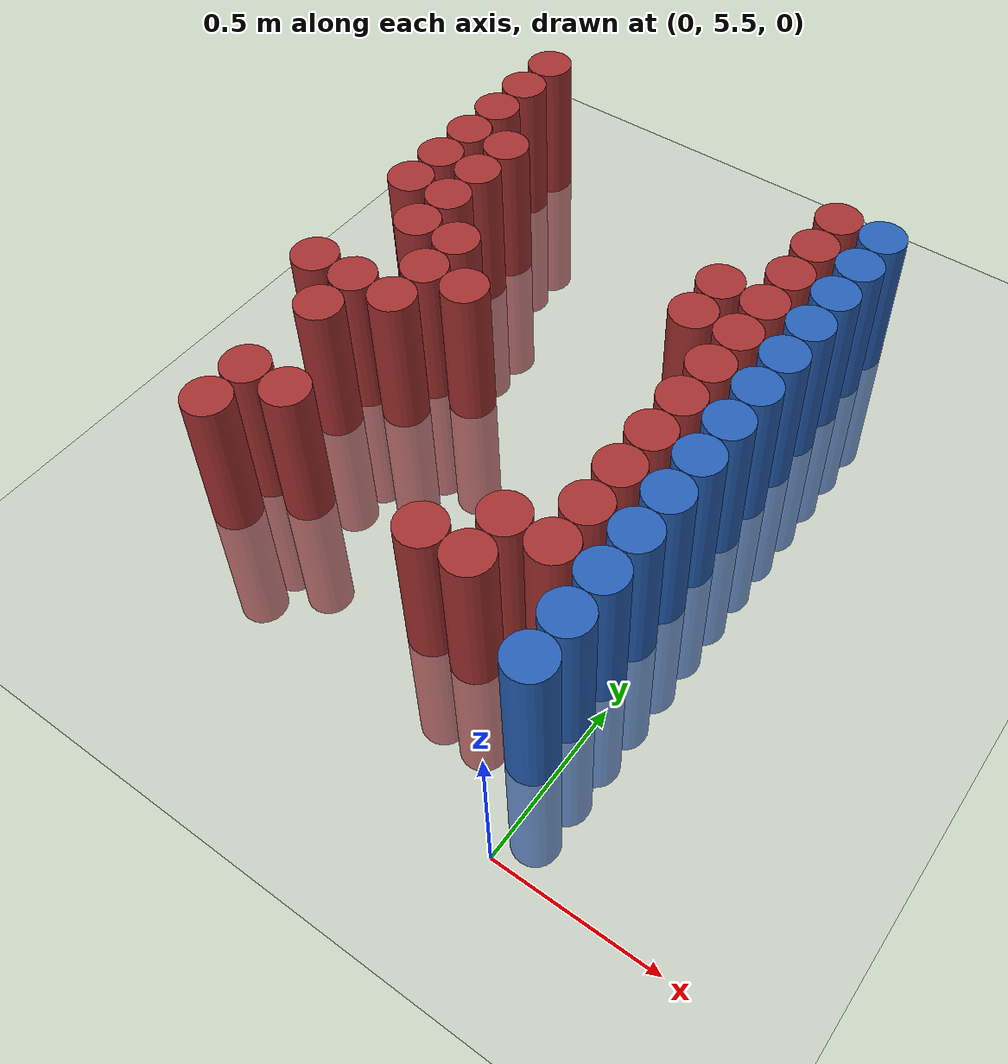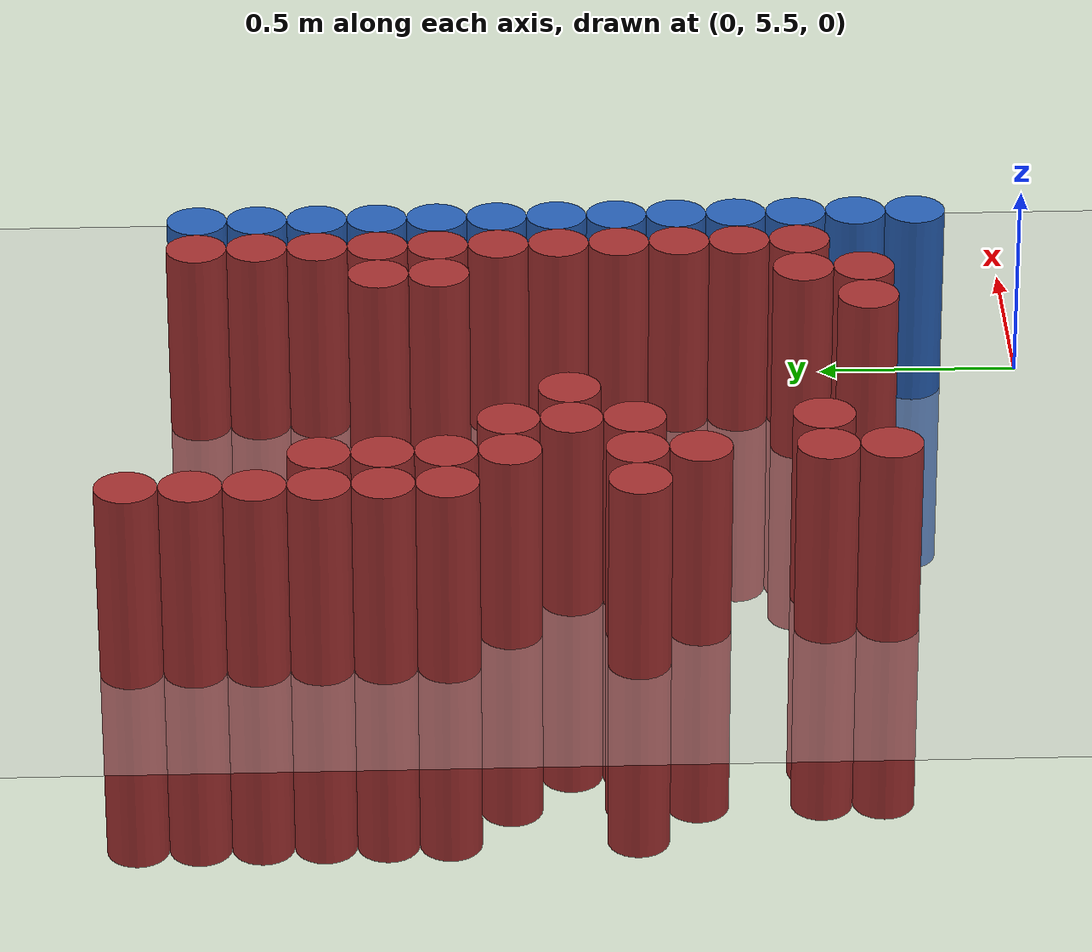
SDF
<sdf version="1.6">
 <world name="default">
  <model name="ground_plane">
   <static>1</static>
   <link name="link">
    <collision name="collision">
     <geometry><plane><normal>0 0 1</normal><size>100 100</size></plane></geometry>
     <surface><friction><ode><mu>100</mu><mu2>50</mu2></ode></friction></surface>
    </collision>
    <visual name="visual">
     <cast_shadows>0</cast_shadows>
     <geometry><plane><normal>0 0 1</normal><size>100 100</size></plane></geometry>
     <material>
      <script><uri>file://media/materials/scripts/gazebo.material</uri><name>Gazebo/Grey</name></script>
     </material>
    </visual>
   </link>
  </model>
  <model name="unit_cylinder_230">
   <static>1</static>
   <pose>-1.425000 6.525000 0.000000 0.000000 0.000000 0.000000</pose>
   <link name="link">
    <inertial>
     <mass>1</mass>
     <inertia><ixx>0.145833</ixx><ixy>0</ixy><ixz>0</ixz><iyy>0.145833</iyy><iyz>0</iyz><izz>0.125</izz></inertia>
    </inertial>
    <collision name="collision">
     <geometry><cylinder><radius>0.075000</radius><length>1</length></cylinder></geometry>
    </collision>
    <visual name="visual">
     <geometry><cylinder><radius>0.075000</radius><length>1</length></cylinder></geometry>
     <material>
      <ambient>0.648000 0.192000 0.192000 1</ambient>
      <diffuse>0.648000 0.192000 0.192000 1</diffuse>
     </material>
     <material>
      <script><name>Gazebo/Grey</name><uri>file://media/materials/scripts/gazebo.material</uri></script>
     </material>
    </visual>
   </link>
  </model>
  <model name="unit_cylinder_231">
   <static>1</static>
   <pose>-1.425000 6.975000 0.000000 0.000000 0.000000 0.000000</pose>
   <link name="link">
    <inertial>
     <mass>1</mass>
     <inertia><ixx>0.145833</ixx><ixy>0</ixy><ixz>0</ixz><iyy>0.145833</iyy><iyz>0</iyz><izz>0.125</izz></inertia>
    </inertial>
    <collision name="collision">
     <geometry><cylinder><radius>0.075000</radius><length>1</length></cylinder></geometry>
    </collision>
    <visual name="visual">
     <geometry><cylinder><radius>0.075000</radius><length>1</length></cylinder></geometry>
     <material>
      <ambient>0.648000 0.192000 0.192000 1</ambient>
      <diffuse>0.648000 0.192000 0.192000 1</diffuse>
     </material>
     <material>
      <script><name>Gazebo/Grey</name><uri>file://media/materials/scripts/gazebo.material</uri></script>
     </material>
    </visual>
   </link>
  </model>
  <model name="unit_cylinder_232">
   <static>1</static>
   <pose>-1.425000 7.125000 0.000000 0.000000 0.000000 0.000000</pose>
   <link name="link">
    <inertial>
     <mass>1</mass>
     <inertia><ixx>0.145833</ixx><ixy>0</ixy><ixz>0</ixz><iyy>0.145833</iyy><iyz>0</iyz><izz>0.125</izz></inertia>
    </inertial>
    <collision name="collision">
     <geometry><cylinder><radius>0.075000</radius><length>1</length></cylinder></geometry>
    </collision>
    <visual name="visual">
     <geometry><cylinder><radius>0.075000</radius><length>1</length></cylinder></geometry>
     <material>
      <ambient>0.648000 0.192000 0.192000 1</ambient>
      <diffuse>0.648000 0.192000 0.192000 1</diffuse>
     </material>
     <material>
      <script><name>Gazebo/Grey</name><uri>file://media/materials/scripts/gazebo.material</uri></script>
     </material>
    </visual>
   </link>
  </model>
  <model name="unit_cylinder_233">
   <static>1</static>
   <pose>-1.425000 7.275000 0.000000 0.000000 0.000000 0.000000</pose>
   <link name="link">
    <inertial>
     <mass>1</mass>
     <inertia><ixx>0.145833</ixx><ixy>0</ixy><ixz>0</ixz><iyy>0.145833</iyy><iyz>0</iyz><izz>0.125</izz></inertia>
    </inertial>
    <collision name="collision">
     <geometry><cylinder><radius>0.075000</radius><length>1</length></cylinder></geometry>
    </collision>
    <visual name="visual">
     <geometry><cylinder><radius>0.075000</radius><length>1</length></cylinder></geometry>
     <material>
      <ambient>0.648000 0.192000 0.192000 1</ambient>
      <diffuse>0.648000 0.192000 0.192000 1</diffuse>
     </material>
     <material>
      <script><name>Gazebo/Grey</name><uri>file://media/materials/scripts/gazebo.material</uri></script>
     </material>
    </visual>
   </link>
  </model>
  <model name="unit_cylinder_234">
   <static>1</static>
   <pose>-1.425000 7.425000 0.000000 0.000000 0.000000 0.000000</pose>
   <link name="link">
    <inertial>
     <mass>1</mass>
     <inertia><ixx>0.145833</ixx><ixy>0</ixy><ixz>0</ixz><iyy>0.145833</iyy><iyz>0</iyz><izz>0.125</izz></inertia>
    </inertial>
    <collision name="collision">
     <geometry><cylinder><radius>0.075000</radius><length>1</length></cylinder></geometry>
    </collision>
    <visual name="visual">
     <geometry><cylinder><radius>0.075000</radius><length>1</length></cylinder></geometry>
     <material>
      <ambient>0.648000 0.192000 0.192000 1</ambient>
      <diffuse>0.648000 0.192000 0.192000 1</diffuse>
     </material>
     <material>
      <script><name>Gazebo/Grey</name><uri>file://media/materials/scripts/gazebo.material</uri></script>
     </material>
    </visual>
   </link>
  </model>
  <model name="unit_cylinder_235">
   <static>1</static>
   <pose>-1.425000 7.575000 0.000000 0.000000 0.000000 0.000000</pose>
   <link name="link">
    <inertial>
     <mass>1</mass>
     <inertia><ixx>0.145833</ixx><ixy>0</ixy><ixz>0</ixz><iyy>0.145833</iyy><iyz>0</iyz><izz>0.125</izz></inertia>
    </inertial>
    <collision name="collision">
     <geometry><cylinder><radius>0.075000</radius><length>1</length></cylinder></geometry>
    </collision>
    <visual name="visual">
     <geometry><cylinder><radius>0.075000</radius><length>1</length></cylinder></geometry>
     <material>
      <ambient>0.648000 0.192000 0.192000 1</ambient>
      <diffuse>0.648000 0.192000 0.192000 1</diffuse>
     </material>
     <material>
      <script><name>Gazebo/Grey</name><uri>file://media/materials/scripts/gazebo.material</uri></script>
     </material>
    </visual>
   </link>
  </model>
  <model name="unit_cylinder_236">
   <static>1</static>
   <pose>-1.425000 7.725000 0.000000 0.000000 0.000000 0.000000</pose>
   <link name="link">
    <inertial>
     <mass>1</mass>
     <inertia><ixx>0.145833</ixx><ixy>0</ixy><ixz>0</ixz><iyy>0.145833</iyy><iyz>0</iyz><izz>0.125</izz></inertia>
    </inertial>
    <collision name="collision">
     <geometry><cylinder><radius>0.075000</radius><length>1</length></cylinder></geometry>
    </collision>
    <visual name="visual">
     <geometry><cylinder><radius>0.075000</radius><length>1</length></cylinder></geometry>
     <material>
      <ambient>0.648000 0.192000 0.192000 1</ambient>
      <diffuse>0.648000 0.192000 0.192000 1</diffuse>
     </material>
     <material>
      <script><name>Gazebo/Grey</name><uri>file://media/materials/scripts/gazebo.material</uri></script>
     </material>
    </visual>
   </link>
  </model>
  <model name="unit_cylinder_245">
   <static>1</static>
   <pose>-1.275000 5.925000 0.000000 0.000000 0.000000 0.000000</pose>
   <link name="link">
    <inertial>
     <mass>1</mass>
     <inertia><ixx>0.145833</ixx><ixy>0</ixy><ixz>0</ixz><iyy>0.145833</iyy><iyz>0</iyz><izz>0.125</izz></inertia>
    </inertial>
    <collision name="collision">
     <geometry><cylinder><radius>0.075000</radius><length>1</length></cylinder></geometry>
    </collision>
    <visual name="visual">
     <geometry><cylinder><radius>0.075000</radius><length>1</length></cylinder></geometry>
     <material>
      <ambient>0.648000 0.192000 0.192000 1</ambient>
      <diffuse>0.648000 0.192000 0.192000 1</diffuse>
     </material>
     <material>
      <script><name>Gazebo/Grey</name><uri>file://media/materials/scripts/gazebo.material</uri></script>
     </material>
    </visual>
   </link>
  </model>
  <model name="unit_cylinder_246">
   <static>1</static>
   <pose>-1.275000 6.075000 0.000000 0.000000 0.000000 0.000000</pose>
   <link name="link">
    <inertial>
     <mass>1</mass>
     <inertia><ixx>0.145833</ixx><ixy>0</ixy><ixz>0</ixz><iyy>0.145833</iyy><iyz>0</iyz><izz>0.125</izz></inertia>
    </inertial>
    <collision name="collision">
     <geometry><cylinder><radius>0.075000</radius><length>1</length></cylinder></geometry>
    </collision>
    <visual name="visual">
     <geometry><cylinder><radius>0.075000</radius><length>1</length></cylinder></geometry>
     <material>
      <ambient>0.648000 0.192000 0.192000 1</ambient>
      <diffuse>0.648000 0.192000 0.192000 1</diffuse>
     </material>
     <material>
      <script><name>Gazebo/Grey</name><uri>file://media/materials/scripts/gazebo.material</uri></script>
     </material>
    </visual>
   </link>
  </model>
  <model name="unit_cylinder_247">
   <static>1</static>
   <pose>-1.275000 6.375000 0.000000 0.000000 0.000000 0.000000</pose>
   <link name="link">
    <inertial>
     <mass>1</mass>
     <inertia><ixx>0.145833</ixx><ixy>0</ixy><ixz>0</ixz><iyy>0.145833</iyy><iyz>0</iyz><izz>0.125</izz></inertia>
    </inertial>
    <collision name="collision">
     <geometry><cylinder><radius>0.075000</radius><length>1</length></cylinder></geometry>
    </collision>
    <visual name="visual">
     <geometry><cylinder><radius>0.075000</radius><length>1</length></cylinder></geometry>
     <material>
      <ambient>0.648000 0.192000 0.192000 1</ambient>
      <diffuse>0.648000 0.192000 0.192000 1</diffuse>
     </material>
     <material>
      <script><name>Gazebo/Grey</name><uri>file://media/materials/scripts/gazebo.material</uri></script>
     </material>
    </visual>
   </link>
  </model>
  <model name="unit_cylinder_248">
   <static>1</static>
   <pose>-1.275000 6.525000 0.000000 0.000000 0.000000 0.000000</pose>
   <link name="link">
    <inertial>
     <mass>1</mass>
     <inertia><ixx>0.145833</ixx><ixy>0</ixy><ixz>0</ixz><iyy>0.145833</iyy><iyz>0</iyz><izz>0.125</izz></inertia>
    </inertial>
    <collision name="collision">
     <geometry><cylinder><radius>0.075000</radius><length>1</length></cylinder></geometry>
    </collision>
    <visual name="visual">
     <geometry><cylinder><radius>0.075000</radius><length>1</length></cylinder></geometry>
     <material>
      <ambient>0.648000 0.192000 0.192000 1</ambient>
      <diffuse>0.648000 0.192000 0.192000 1</diffuse>
     </material>
     <material>
      <script><name>Gazebo/Grey</name><uri>file://media/materials/scripts/gazebo.material</uri></script>
     </material>
    </visual>
   </link>
  </model>
  <model name="unit_cylinder_249">
   <static>1</static>
   <pose>-1.275000 6.825000 0.000000 0.000000 0.000000 0.000000</pose>
   <link name="link">
    <inertial>
     <mass>1</mass>
     <inertia><ixx>0.145833</ixx><ixy>0</ixy><ixz>0</ixz><iyy>0.145833</iyy><iyz>0</iyz><izz>0.125</izz></inertia>
    </inertial>
    <collision name="collision">
     <geometry><cylinder><radius>0.075000</radius><length>1</length></cylinder></geometry>
    </collision>
    <visual name="visual">
     <geometry><cylinder><radius>0.075000</radius><length>1</length></cylinder></geometry>
     <material>
      <ambient>0.648000 0.192000 0.192000 1</ambient>
      <diffuse>0.648000 0.192000 0.192000 1</diffuse>
     </material>
     <material>
      <script><name>Gazebo/Grey</name><uri>file://media/materials/scripts/gazebo.material</uri></script>
     </material>
    </visual>
   </link>
  </model>
  <model name="unit_cylinder_250">
   <static>1</static>
   <pose>-1.275000 6.975000 0.000000 0.000000 0.000000 0.000000</pose>
   <link name="link">
    <inertial>
     <mass>1</mass>
     <inertia><ixx>0.145833</ixx><ixy>0</ixy><ixz>0</ixz><iyy>0.145833</iyy><iyz>0</iyz><izz>0.125</izz></inertia>
    </inertial>
    <collision name="collision">
     <geometry><cylinder><radius>0.075000</radius><length>1</length></cylinder></geometry>
    </collision>
    <visual name="visual">
     <geometry><cylinder><radius>0.075000</radius><length>1</length></cylinder></geometry>
     <material>
      <ambient>0.648000 0.192000 0.192000 1</ambient>
      <diffuse>0.648000 0.192000 0.192000 1</diffuse>
     </material>
     <material>
      <script><name>Gazebo/Grey</name><uri>file://media/materials/scripts/gazebo.material</uri></script>
     </material>
    </visual>
   </link>
  </model>
  <model name="unit_cylinder_251">
   <static>1</static>
   <pose>-1.275000 7.125000 0.000000 0.000000 0.000000 0.000000</pose>
   <link name="link">
    <inertial>
     <mass>1</mass>
     <inertia><ixx>0.145833</ixx><ixy>0</ixy><ixz>0</ixz><iyy>0.145833</iyy><iyz>0</iyz><izz>0.125</izz></inertia>
    </inertial>
    <collision name="collision">
     <geometry><cylinder><radius>0.075000</radius><length>1</length></cylinder></geometry>
    </collision>
    <visual name="visual">
     <geometry><cylinder><radius>0.075000</radius><length>1</length></cylinder></geometry>
     <material>
      <ambient>0.648000 0.192000 0.192000 1</ambient>
      <diffuse>0.648000 0.192000 0.192000 1</diffuse>
     </material>
     <material>
      <script><name>Gazebo/Grey</name><uri>file://media/materials/scripts/gazebo.material</uri></script>
     </material>
    </visual>
   </link>
  </model>
  <model name="unit_cylinder_252">
   <static>1</static>
   <pose>-1.275000 7.275000 0.000000 0.000000 0.000000 0.000000</pose>
   <link name="link">
    <inertial>
     <mass>1</mass>
     <inertia><ixx>0.145833</ixx><ixy>0</ixy><ixz>0</ixz><iyy>0.145833</iyy><iyz>0</iyz><izz>0.125</izz></inertia>
    </inertial>
    <collision name="collision">
     <geometry><cylinder><radius>0.075000</radius><length>1</length></cylinder></geometry>
    </collision>
    <visual name="visual">
     <geometry><cylinder><radius>0.075000</radius><length>1</length></cylinder></geometry>
     <material>
      <ambient>0.648000 0.192000 0.192000 1</ambient>
      <diffuse>0.648000 0.192000 0.192000 1</diffuse>
     </material>
     <material>
      <script><name>Gazebo/Grey</name><uri>file://media/materials/scripts/gazebo.material</uri></script>
     </material>
    </visual>
   </link>
  </model>
  <model name="unit_cylinder_260">
   <static>1</static>
   <pose>-1.125000 6.075000 0.000000 0.000000 0.000000 0.000000</pose>
   <link name="link">
    <inertial>
     <mass>1</mass>
     <inertia><ixx>0.145833</ixx><ixy>0</ixy><ixz>0</ixz><iyy>0.145833</iyy><iyz>0</iyz><izz>0.125</izz></inertia>
    </inertial>
    <collision name="collision">
     <geometry><cylinder><radius>0.075000</radius><length>1</length></cylinder></geometry>
    </collision>
    <visual name="visual">
     <geometry><cylinder><radius>0.075000</radius><length>1</length></cylinder></geometry>
     <material>
      <ambient>0.648000 0.192000 0.192000 1</ambient>
      <diffuse>0.648000 0.192000 0.192000 1</diffuse>
     </material>
     <material>
      <script><name>Gazebo/Grey</name><uri>file://media/materials/scripts/gazebo.material</uri></script>
     </material>
    </visual>
   </link>
  </model>
  <model name="unit_cylinder_261">
   <static>1</static>
   <pose>-1.125000 6.525000 0.000000 0.000000 0.000000 0.000000</pose>
   <link name="link">
    <inertial>
     <mass>1</mass>
     <inertia><ixx>0.145833</ixx><ixy>0</ixy><ixz>0</ixz><iyy>0.145833</iyy><iyz>0</iyz><izz>0.125</izz></inertia>
    </inertial>
    <collision name="collision">
     <geometry><cylinder><radius>0.075000</radius><length>1</length></cylinder></geometry>
    </collision>
    <visual name="visual">
     <geometry><cylinder><radius>0.075000</radius><length>1</length></cylinder></geometry>
     <material>
      <ambient>0.648000 0.192000 0.192000 1</ambient>
      <diffuse>0.648000 0.192000 0.192000 1</diffuse>
     </material>
     <material>
      <script><name>Gazebo/Grey</name><uri>file://media/materials/scripts/gazebo.material</uri></script>
     </material>
    </visual>
   </link>
  </model>
  <model name="unit_cylinder_262">
   <static>1</static>
   <pose>-1.125000 6.675000 0.000000 0.000000 0.000000 0.000000</pose>
   <link name="link">
    <inertial>
     <mass>1</mass>
     <inertia><ixx>0.145833</ixx><ixy>0</ixy><ixz>0</ixz><iyy>0.145833</iyy><iyz>0</iyz><izz>0.125</izz></inertia>
    </inertial>
    <collision name="collision">
     <geometry><cylinder><radius>0.075000</radius><length>1</length></cylinder></geometry>
    </collision>
    <visual name="visual">
     <geometry><cylinder><radius>0.075000</radius><length>1</length></cylinder></geometry>
     <material>
      <ambient>0.648000 0.192000 0.192000 1</ambient>
      <diffuse>0.648000 0.192000 0.192000 1</diffuse>
     </material>
     <material>
      <script><name>Gazebo/Grey</name><uri>file://media/materials/scripts/gazebo.material</uri></script>
     </material>
    </visual>
   </link>
  </model>
  <model name="unit_cylinder_263">
   <static>1</static>
   <pose>-1.125000 6.825000 0.000000 0.000000 0.000000 0.000000</pose>
   <link name="link">
    <inertial>
     <mass>1</mass>
     <inertia><ixx>0.145833</ixx><ixy>0</ixy><ixz>0</ixz><iyy>0.145833</iyy><iyz>0</iyz><izz>0.125</izz></inertia>
    </inertial>
    <collision name="collision">
     <geometry><cylinder><radius>0.075000</radius><length>1</length></cylinder></geometry>
    </collision>
    <visual name="visual">
     <geometry><cylinder><radius>0.075000</radius><length>1</length></cylinder></geometry>
     <material>
      <ambient>0.648000 0.192000 0.192000 1</ambient>
      <diffuse>0.648000 0.192000 0.192000 1</diffuse>
     </material>
     <material>
      <script><name>Gazebo/Grey</name><uri>file://media/materials/scripts/gazebo.material</uri></script>
     </material>
    </visual>
   </link>
  </model>
  <model name="unit_cylinder_267">
   <static>1</static>
   <pose>-0.975000 6.675000 0.000000 0.000000 0.000000 0.000000</pose>
   <link name="link">
    <inertial>
     <mass>1</mass>
     <inertia><ixx>0.145833</ixx><ixy>0</ixy><ixz>0</ixz><iyy>0.145833</iyy><iyz>0</iyz><izz>0.125</izz></inertia>
    </inertial>
    <collision name="collision">
     <geometry><cylinder><radius>0.075000</radius><length>1</length></cylinder></geometry>
    </collision>
    <visual name="visual">
     <geometry><cylinder><radius>0.075000</radius><length>1</length></cylinder></geometry>
     <material>
      <ambient>0.648000 0.192000 0.192000 1</ambient>
      <diffuse>0.648000 0.192000 0.192000 1</diffuse>
     </material>
     <material>
      <script><name>Gazebo/Grey</name><uri>file://media/materials/scripts/gazebo.material</uri></script>
     </material>
    </visual>
   </link>
  </model>
  <model name="unit_cylinder_280">
   <static>1</static>
   <pose>-0.525000 5.925000 0.000000 0.000000 0.000000 0.000000</pose>
   <link name="link">
    <inertial>
     <mass>1</mass>
     <inertia><ixx>0.145833</ixx><ixy>0</ixy><ixz>0</ixz><iyy>0.145833</iyy><iyz>0</iyz><izz>0.125</izz></inertia>
    </inertial>
    <collision name="collision">
     <geometry><cylinder><radius>0.075000</radius><length>1</length></cylinder></geometry>
    </collision>
    <visual name="visual">
     <geometry><cylinder><radius>0.075000</radius><length>1</length></cylinder></geometry>
     <material>
      <ambient>0.648000 0.192000 0.192000 1</ambient>
      <diffuse>0.648000 0.192000 0.192000 1</diffuse>
     </material>
     <material>
      <script><name>Gazebo/Grey</name><uri>file://media/materials/scripts/gazebo.material</uri></script>
     </material>
    </visual>
   </link>
  </model>
  <model name="unit_cylinder_285">
   <static>1</static>
   <pose>-0.375000 5.925000 0.000000 0.000000 0.000000 0.000000</pose>
   <link name="link">
    <inertial>
     <mass>1</mass>
     <inertia><ixx>0.145833</ixx><ixy>0</ixy><ixz>0</ixz><iyy>0.145833</iyy><iyz>0</iyz><izz>0.125</izz></inertia>
    </inertial>
    <collision name="collision">
     <geometry><cylinder><radius>0.075000</radius><length>1</length></cylinder></geometry>
    </collision>
    <visual name="visual">
     <geometry><cylinder><radius>0.075000</radius><length>1</length></cylinder></geometry>
     <material>
      <ambient>0.648000 0.192000 0.192000 1</ambient>
      <diffuse>0.648000 0.192000 0.192000 1</diffuse>
     </material>
     <material>
      <script><name>Gazebo/Grey</name><uri>file://media/materials/scripts/gazebo.material</uri></script>
     </material>
    </visual>
   </link>
  </model>
  <model name="unit_cylinder_286">
   <static>1</static>
   <pose>-0.375000 6.075000 0.000000 0.000000 0.000000 0.000000</pose>
   <link name="link">
    <inertial>
     <mass>1</mass>
     <inertia><ixx>0.145833</ixx><ixy>0</ixy><ixz>0</ixz><iyy>0.145833</iyy><iyz>0</iyz><izz>0.125</izz></inertia>
    </inertial>
    <collision name="collision">
     <geometry><cylinder><radius>0.075000</radius><length>1</length></cylinder></geometry>
    </collision>
    <visual name="visual">
     <geometry><cylinder><radius>0.075000</radius><length>1</length></cylinder></geometry>
     <material>
      <ambient>0.648000 0.192000 0.192000 1</ambient>
      <diffuse>0.648000 0.192000 0.192000 1</diffuse>
     </material>
     <material>
      <script><name>Gazebo/Grey</name><uri>file://media/materials/scripts/gazebo.material</uri></script>
     </material>
    </visual>
   </link>
  </model>
  <model name="unit_cylinder_287">
   <static>1</static>
   <pose>-0.375000 6.975000 0.000000 0.000000 0.000000 0.000000</pose>
   <link name="link">
    <inertial>
     <mass>1</mass>
     <inertia><ixx>0.145833</ixx><ixy>0</ixy><ixz>0</ixz><iyy>0.145833</iyy><iyz>0</iyz><izz>0.125</izz></inertia>
    </inertial>
    <collision name="collision">
     <geometry><cylinder><radius>0.075000</radius><length>1</length></cylinder></geometry>
    </collision>
    <visual name="visual">
     <geometry><cylinder><radius>0.075000</radius><length>1</length></cylinder></geometry>
     <material>
      <ambient>0.648000 0.192000 0.192000 1</ambient>
      <diffuse>0.648000 0.192000 0.192000 1</diffuse>
     </material>
     <material>
      <script><name>Gazebo/Grey</name><uri>file://media/materials/scripts/gazebo.material</uri></script>
     </material>
    </visual>
   </link>
  </model>
  <model name="unit_cylinder_288">
   <static>1</static>
   <pose>-0.375000 7.125000 0.000000 0.000000 0.000000 0.000000</pose>
   <link name="link">
    <inertial>
     <mass>1</mass>
     <inertia><ixx>0.145833</ixx><ixy>0</ixy><ixz>0</ixz><iyy>0.145833</iyy><iyz>0</iyz><izz>0.125</izz></inertia>
    </inertial>
    <collision name="collision">
     <geometry><cylinder><radius>0.075000</radius><length>1</length></cylinder></geometry>
    </collision>
    <visual name="visual">
     <geometry><cylinder><radius>0.075000</radius><length>1</length></cylinder></geometry>
     <material>
      <ambient>0.648000 0.192000 0.192000 1</ambient>
      <diffuse>0.648000 0.192000 0.192000 1</diffuse>
     </material>
     <material>
      <script><name>Gazebo/Grey</name><uri>file://media/materials/scripts/gazebo.material</uri></script>
     </material>
    </visual>
   </link>
  </model>
  <model name="unit_cylinder_294">
   <static>1</static>
   <pose>-0.225000 6.075000 0.000000 0.000000 0.000000 0.000000</pose>
   <link name="link">
    <inertial>
     <mass>1</mass>
     <inertia><ixx>0.145833</ixx><ixy>0</ixy><ixz>0</ixz><iyy>0.145833</iyy><iyz>0</iyz><izz>0.125</izz></inertia>
    </inertial>
    <collision name="collision">
     <geometry><cylinder><radius>0.075000</radius><length>1</length></cylinder></geometry>
    </collision>
    <visual name="visual">
     <geometry><cylinder><radius>0.075000</radius><length>1</length></cylinder></geometry>
     <material>
      <ambient>0.648000 0.192000 0.192000 1</ambient>
      <diffuse>0.648000 0.192000 0.192000 1</diffuse>
     </material>
     <material>
      <script><name>Gazebo/Grey</name><uri>file://media/materials/scripts/gazebo.material</uri></script>
     </material>
    </visual>
   </link>
  </model>
  <model name="unit_cylinder_295">
   <static>1</static>
   <pose>-0.225000 6.225000 0.000000 0.000000 0.000000 0.000000</pose>
   <link name="link">
    <inertial>
     <mass>1</mass>
     <inertia><ixx>0.145833</ixx><ixy>0</ixy><ixz>0</ixz><iyy>0.145833</iyy><iyz>0</iyz><izz>0.125</izz></inertia>
    </inertial>
    <collision name="collision">
     <geometry><cylinder><radius>0.075000</radius><length>1</length></cylinder></geometry>
    </collision>
    <visual name="visual">
     <geometry><cylinder><radius>0.075000</radius><length>1</length></cylinder></geometry>
     <material>
      <ambient>0.648000 0.192000 0.192000 1</ambient>
      <diffuse>0.648000 0.192000 0.192000 1</diffuse>
     </material>
     <material>
      <script><name>Gazebo/Grey</name><uri>file://media/materials/scripts/gazebo.material</uri></script>
     </material>
    </visual>
   </link>
  </model>
  <model name="unit_cylinder_296">
   <static>1</static>
   <pose>-0.225000 6.375000 0.000000 0.000000 0.000000 0.000000</pose>
   <link name="link">
    <inertial>
     <mass>1</mass>
     <inertia><ixx>0.145833</ixx><ixy>0</ixy><ixz>0</ixz><iyy>0.145833</iyy><iyz>0</iyz><izz>0.125</izz></inertia>
    </inertial>
    <collision name="collision">
     <geometry><cylinder><radius>0.075000</radius><length>1</length></cylinder></geometry>
    </collision>
    <visual name="visual">
     <geometry><cylinder><radius>0.075000</radius><length>1</length></cylinder></geometry>
     <material>
      <ambient>0.648000 0.192000 0.192000 1</ambient>
      <diffuse>0.648000 0.192000 0.192000 1</diffuse>
     </material>
     <material>
      <script><name>Gazebo/Grey</name><uri>file://media/materials/scripts/gazebo.material</uri></script>
     </material>
    </visual>
   </link>
  </model>
  <model name="unit_cylinder_297">
   <static>1</static>
   <pose>-0.225000 6.525000 0.000000 0.000000 0.000000 0.000000</pose>
   <link name="link">
    <inertial>
     <mass>1</mass>
     <inertia><ixx>0.145833</ixx><ixy>0</ixy><ixz>0</ixz><iyy>0.145833</iyy><iyz>0</iyz><izz>0.125</izz></inertia>
    </inertial>
    <collision name="collision">
     <geometry><cylinder><radius>0.075000</radius><length>1</length></cylinder></geometry>
    </collision>
    <visual name="visual">
     <geometry><cylinder><radius>0.075000</radius><length>1</length></cylinder></geometry>
     <material>
      <ambient>0.648000 0.192000 0.192000 1</ambient>
      <diffuse>0.648000 0.192000 0.192000 1</diffuse>
     </material>
     <material>
      <script><name>Gazebo/Grey</name><uri>file://media/materials/scripts/gazebo.material</uri></script>
     </material>
    </visual>
   </link>
  </model>
  <model name="unit_cylinder_298">
   <static>1</static>
   <pose>-0.225000 6.675000 0.000000 0.000000 0.000000 0.000000</pose>
   <link name="link">
    <inertial>
     <mass>1</mass>
     <inertia><ixx>0.145833</ixx><ixy>0</ixy><ixz>0</ixz><iyy>0.145833</iyy><iyz>0</iyz><izz>0.125</izz></inertia>
    </inertial>
    <collision name="collision">
     <geometry><cylinder><radius>0.075000</radius><length>1</length></cylinder></geometry>
    </collision>
    <visual name="visual">
     <geometry><cylinder><radius>0.075000</radius><length>1</length></cylinder></geometry>
     <material>
      <ambient>0.648000 0.192000 0.192000 1</ambient>
      <diffuse>0.648000 0.192000 0.192000 1</diffuse>
     </material>
     <material>
      <script><name>Gazebo/Grey</name><uri>file://media/materials/scripts/gazebo.material</uri></script>
     </material>
    </visual>
   </link>
  </model>
  <model name="unit_cylinder_299">
   <static>1</static>
   <pose>-0.225000 6.825000 0.000000 0.000000 0.000000 0.000000</pose>
   <link name="link">
    <inertial>
     <mass>1</mass>
     <inertia><ixx>0.145833</ixx><ixy>0</ixy><ixz>0</ixz><iyy>0.145833</iyy><iyz>0</iyz><izz>0.125</izz></inertia>
    </inertial>
    <collision name="collision">
     <geometry><cylinder><radius>0.075000</radius><length>1</length></cylinder></geometry>
    </collision>
    <visual name="visual">
     <geometry><cylinder><radius>0.075000</radius><length>1</length></cylinder></geometry>
     <material>
      <ambient>0.648000 0.192000 0.192000 1</ambient>
      <diffuse>0.648000 0.192000 0.192000 1</diffuse>
     </material>
     <material>
      <script><name>Gazebo/Grey</name><uri>file://media/materials/scripts/gazebo.material</uri></script>
     </material>
    </visual>
   </link>
  </model>
  <model name="unit_cylinder_300">
   <static>1</static>
   <pose>-0.225000 6.975000 0.000000 0.000000 0.000000 0.000000</pose>
   <link name="link">
    <inertial>
     <mass>1</mass>
     <inertia><ixx>0.145833</ixx><ixy>0</ixy><ixz>0</ixz><iyy>0.145833</iyy><iyz>0</iyz><izz>0.125</izz></inertia>
    </inertial>
    <collision name="collision">
     <geometry><cylinder><radius>0.075000</radius><length>1</length></cylinder></geometry>
    </collision>
    <visual name="visual">
     <geometry><cylinder><radius>0.075000</radius><length>1</length></cylinder></geometry>
     <material>
      <ambient>0.648000 0.192000 0.192000 1</ambient>
      <diffuse>0.648000 0.192000 0.192000 1</diffuse>
     </material>
     <material>
      <script><name>Gazebo/Grey</name><uri>file://media/materials/scripts/gazebo.material</uri></script>
     </material>
    </visual>
   </link>
  </model>
  <model name="unit_cylinder_301">
   <static>1</static>
   <pose>-0.225000 7.125000 0.000000 0.000000 0.000000 0.000000</pose>
   <link name="link">
    <inertial>
     <mass>1</mass>
     <inertia><ixx>0.145833</ixx><ixy>0</ixy><ixz>0</ixz><iyy>0.145833</iyy><iyz>0</iyz><izz>0.125</izz></inertia>
    </inertial>
    <collision name="collision">
     <geometry><cylinder><radius>0.075000</radius><length>1</length></cylinder></geometry>
    </collision>
    <visual name="visual">
     <geometry><cylinder><radius>0.075000</radius><length>1</length></cylinder></geometry>
     <material>
      <ambient>0.648000 0.192000 0.192000 1</ambient>
      <diffuse>0.648000 0.192000 0.192000 1</diffuse>
     </material>
     <material>
      <script><name>Gazebo/Grey</name><uri>file://media/materials/scripts/gazebo.material</uri></script>
     </material>
    </visual>
   </link>
  </model>
  <model name="unit_cylinder_302">
   <static>1</static>
   <pose>-0.225000 7.275000 0.000000 0.000000 0.000000 0.000000</pose>
   <link name="link">
    <inertial>
     <mass>1</mass>
     <inertia><ixx>0.145833</ixx><ixy>0</ixy><ixz>0</ixz><iyy>0.145833</iyy><iyz>0</iyz><izz>0.125</izz></inertia>
    </inertial>
    <collision name="collision">
     <geometry><cylinder><radius>0.075000</radius><length>1</length></cylinder></geometry>
    </collision>
    <visual name="visual">
     <geometry><cylinder><radius>0.075000</radius><length>1</length></cylinder></geometry>
     <material>
      <ambient>0.648000 0.192000 0.192000 1</ambient>
      <diffuse>0.648000 0.192000 0.192000 1</diffuse>
     </material>
     <material>
      <script><name>Gazebo/Grey</name><uri>file://media/materials/scripts/gazebo.material</uri></script>
     </material>
    </visual>
   </link>
  </model>
  <model name="unit_cylinder_303">
   <static>1</static>
   <pose>-0.225000 7.425000 0.000000 0.000000 0.000000 0.000000</pose>
   <link name="link">
    <inertial>
     <mass>1</mass>
     <inertia><ixx>0.145833</ixx><ixy>0</ixy><ixz>0</ixz><iyy>0.145833</iyy><iyz>0</iyz><izz>0.125</izz></inertia>
    </inertial>
    <collision name="collision">
     <geometry><cylinder><radius>0.075000</radius><length>1</length></cylinder></geometry>
    </collision>
    <visual name="visual">
     <geometry><cylinder><radius>0.075000</radius><length>1</length></cylinder></geometry>
     <material>
      <ambient>0.648000 0.192000 0.192000 1</ambient>
      <diffuse>0.648000 0.192000 0.192000 1</diffuse>
     </material>
     <material>
      <script><name>Gazebo/Grey</name><uri>file://media/materials/scripts/gazebo.material</uri></script>
     </material>
    </visual>
   </link>
  </model>
  <model name="unit_cylinder_304">
   <static>1</static>
   <pose>-0.225000 7.575000 0.000000 0.000000 0.000000 0.000000</pose>
   <link name="link">
    <inertial>
     <mass>1</mass>
     <inertia><ixx>0.145833</ixx><ixy>0</ixy><ixz>0</ixz><iyy>0.145833</iyy><iyz>0</iyz><izz>0.125</izz></inertia>
    </inertial>
    <collision name="collision">
     <geometry><cylinder><radius>0.075000</radius><length>1</length></cylinder></geometry>
    </collision>
    <visual name="visual">
     <geometry><cylinder><radius>0.075000</radius><length>1</length></cylinder></geometry>
     <material>
      <ambient>0.648000 0.192000 0.192000 1</ambient>
      <diffuse>0.648000 0.192000 0.192000 1</diffuse>
     </material>
     <material>
      <script><name>Gazebo/Grey</name><uri>file://media/materials/scripts/gazebo.material</uri></script>
     </material>
    </visual>
   </link>
  </model>
  <model name="unit_cylinder_319">
   <static>1</static>
   <pose>-0.075000 5.775000 0.000000 0.000000 0.000000 0.000000</pose>
   <link name="link">
    <inertial>
     <mass>1</mass>
     <inertia><ixx>0.145833</ixx><ixy>0</ixy><ixz>0</ixz><iyy>0.145833</iyy><iyz>0</iyz><izz>0.125</izz></inertia>
    </inertial>
    <collision name="collision">
     <geometry><cylinder><radius>0.075000</radius><length>1</length></cylinder></geometry>
    </collision>
    <visual name="visual">
     <geometry><cylinder><radius>0.075000</radius><length>1</length></cylinder></geometry>
     <material>
      <ambient>0.152000 0.379000 0.720000 1</ambient>
      <diffuse>0.152000 0.379000 0.720000 1</diffuse>
     </material>
     <material>
      <script><name>Gazebo/Grey</name><uri>file://media/materials/scripts/gazebo.material</uri></script>
     </material>
    </visual>
   </link>
  </model>
  <model name="unit_cylinder_320">
   <static>1</static>
   <pose>-0.075000 5.925000 0.000000 0.000000 0.000000 0.000000</pose>
   <link name="link">
    <inertial>
     <mass>1</mass>
     <inertia><ixx>0.145833</ixx><ixy>0</ixy><ixz>0</ixz><iyy>0.145833</iyy><iyz>0</iyz><izz>0.125</izz></inertia>
    </inertial>
    <collision name="collision">
     <geometry><cylinder><radius>0.075000</radius><length>1</length></cylinder></geometry>
    </collision>
    <visual name="visual">
     <geometry><cylinder><radius>0.075000</radius><length>1</length></cylinder></geometry>
     <material>
      <ambient>0.152000 0.379000 0.720000 1</ambient>
      <diffuse>0.152000 0.379000 0.720000 1</diffuse>
     </material>
     <material>
      <script><name>Gazebo/Grey</name><uri>file://media/materials/scripts/gazebo.material</uri></script>
     </material>
    </visual>
   </link>
  </model>
  <model name="unit_cylinder_321">
   <static>1</static>
   <pose>-0.075000 6.075000 0.000000 0.000000 0.000000 0.000000</pose>
   <link name="link">
    <inertial>
     <mass>1</mass>
     <inertia><ixx>0.145833</ixx><ixy>0</ixy><ixz>0</ixz><iyy>0.145833</iyy><iyz>0</iyz><izz>0.125</izz></inertia>
    </inertial>
    <collision name="collision">
     <geometry><cylinder><radius>0.075000</radius><length>1</length></cylinder></geometry>
    </collision>
    <visual name="visual">
     <geometry><cylinder><radius>0.075000</radius><length>1</length></cylinder></geometry>
     <material>
      <ambient>0.152000 0.379000 0.720000 1</ambient>
      <diffuse>0.152000 0.379000 0.720000 1</diffuse>
     </material>
     <material>
      <script><name>Gazebo/Grey</name><uri>file://media/materials/scripts/gazebo.material</uri></script>
     </material>
    </visual>
   </link>
  </model>
  <model name="unit_cylinder_322">
   <static>1</static>
   <pose>-0.075000 6.225000 0.000000 0.000000 0.000000 0.000000</pose>
   <link name="link">
    <inertial>
     <mass>1</mass>
     <inertia><ixx>0.145833</ixx><ixy>0</ixy><ixz>0</ixz><iyy>0.145833</iyy><iyz>0</iyz><izz>0.125</izz></inertia>
    </inertial>
    <collision name="collision">
     <geometry><cylinder><radius>0.075000</radius><length>1</length></cylinder></geometry>
    </collision>
    <visual name="visual">
     <geometry><cylinder><radius>0.075000</radius><length>1</length></cylinder></geometry>
     <material>
      <ambient>0.152000 0.379000 0.720000 1</ambient>
      <diffuse>0.152000 0.379000 0.720000 1</diffuse>
     </material>
     <material>
      <script><name>Gazebo/Grey</name><uri>file://media/materials/scripts/gazebo.material</uri></script>
     </material>
    </visual>
   </link>
  </model>
  <model name="unit_cylinder_323">
   <static>1</static>
   <pose>-0.075000 6.375000 0.000000 0.000000 0.000000 0.000000</pose>
   <link name="link">
    <inertial>
     <mass>1</mass>
     <inertia><ixx>0.145833</ixx><ixy>0</ixy><ixz>0</ixz><iyy>0.145833</iyy><iyz>0</iyz><izz>0.125</izz></inertia>
    </inertial>
    <collision name="collision">
     <geometry><cylinder><radius>0.075000</radius><length>1</length></cylinder></geometry>
    </collision>
    <visual name="visual">
     <geometry><cylinder><radius>0.075000</radius><length>1</length></cylinder></geometry>
     <material>
      <ambient>0.152000 0.379000 0.720000 1</ambient>
      <diffuse>0.152000 0.379000 0.720000 1</diffuse>
     </material>
     <material>
      <script><name>Gazebo/Grey</name><uri>file://media/materials/scripts/gazebo.material</uri></script>
     </material>
    </visual>
   </link>
  </model>
  <model name="unit_cylinder_324">
   <static>1</static>
   <pose>-0.075000 6.525000 0.000000 0.000000 0.000000 0.000000</pose>
   <link name="link">
    <inertial>
     <mass>1</mass>
     <inertia><ixx>0.145833</ixx><ixy>0</ixy><ixz>0</ixz><iyy>0.145833</iyy><iyz>0</iyz><izz>0.125</izz></inertia>
    </inertial>
    <collision name="collision">
     <geometry><cylinder><radius>0.075000</radius><length>1</length></cylinder></geometry>
    </collision>
    <visual name="visual">
     <geometry><cylinder><radius>0.075000</radius><length>1</length></cylinder></geometry>
     <material>
      <ambient>0.152000 0.379000 0.720000 1</ambient>
      <diffuse>0.152000 0.379000 0.720000 1</diffuse>
     </material>
     <material>
      <script><name>Gazebo/Grey</name><uri>file://media/materials/scripts/gazebo.material</uri></script>
     </material>
    </visual>
   </link>
  </model>
  <model name="unit_cylinder_325">
   <static>1</static>
   <pose>-0.075000 6.675000 0.000000 0.000000 0.000000 0.000000</pose>
   <link name="link">
    <inertial>
     <mass>1</mass>
     <inertia><ixx>0.145833</ixx><ixy>0</ixy><ixz>0</ixz><iyy>0.145833</iyy><iyz>0</iyz><izz>0.125</izz></inertia>
    </inertial>
    <collision name="collision">
     <geometry><cylinder><radius>0.075000</radius><length>1</length></cylinder></geometry>
    </collision>
    <visual name="visual">
     <geometry><cylinder><radius>0.075000</radius><length>1</length></cylinder></geometry>
     <material>
      <ambient>0.152000 0.379000 0.720000 1</ambient>
      <diffuse>0.152000 0.379000 0.720000 1</diffuse>
     </material>
     <material>
      <script><name>Gazebo/Grey</name><uri>file://media/materials/scripts/gazebo.material</uri></script>
     </material>
    </visual>
   </link>
  </model>
  <model name="unit_cylinder_326">
   <static>1</static>
   <pose>-0.075000 6.825000 0.000000 0.000000 0.000000 0.000000</pose>
   <link name="link">
    <inertial>
     <mass>1</mass>
     <inertia><ixx>0.145833</ixx><ixy>0</ixy><ixz>0</ixz><iyy>0.145833</iyy><iyz>0</iyz><izz>0.125</izz></inertia>
    </inertial>
    <collision name="collision">
     <geometry><cylinder><radius>0.075000</radius><length>1</length></cylinder></geometry>
    </collision>
    <visual name="visual">
     <geometry><cylinder><radius>0.075000</radius><length>1</length></cylinder></geometry>
     <material>
      <ambient>0.152000 0.379000 0.720000 1</ambient>
      <diffuse>0.152000 0.379000 0.720000 1</diffuse>
     </material>
     <material>
      <script><name>Gazebo/Grey</name><uri>file://media/materials/scripts/gazebo.material</uri></script>
     </material>
    </visual>
   </link>
  </model>
  <model name="unit_cylinder_327">
   <static>1</static>
   <pose>-0.075000 6.975000 0.000000 0.000000 0.000000 0.000000</pose>
   <link name="link">
    <inertial>
     <mass>1</mass>
     <inertia><ixx>0.145833</ixx><ixy>0</ixy><ixz>0</ixz><iyy>0.145833</iyy><iyz>0</iyz><izz>0.125</izz></inertia>
    </inertial>
    <collision name="collision">
     <geometry><cylinder><radius>0.075000</radius><length>1</length></cylinder></geometry>
    </collision>
    <visual name="visual">
     <geometry><cylinder><radius>0.075000</radius><length>1</length></cylinder></geometry>
     <material>
      <ambient>0.152000 0.379000 0.720000 1</ambient>
      <diffuse>0.152000 0.379000 0.720000 1</diffuse>
     </material>
     <material>
      <script><name>Gazebo/Grey</name><uri>file://media/materials/scripts/gazebo.material</uri></script>
     </material>
    </visual>
   </link>
  </model>
  <model name="unit_cylinder_328">
   <static>1</static>
   <pose>-0.075000 7.125000 0.000000 0.000000 0.000000 0.000000</pose>
   <link name="link">
    <inertial>
     <mass>1</mass>
     <inertia><ixx>0.145833</ixx><ixy>0</ixy><ixz>0</ixz><iyy>0.145833</iyy><iyz>0</iyz><izz>0.125</izz></inertia>
    </inertial>
    <collision name="collision">
     <geometry><cylinder><radius>0.075000</radius><length>1</length></cylinder></geometry>
    </collision>
    <visual name="visual">
     <geometry><cylinder><radius>0.075000</radius><length>1</length></cylinder></geometry>
     <material>
      <ambient>0.152000 0.379000 0.720000 1</ambient>
      <diffuse>0.152000 0.379000 0.720000 1</diffuse>
     </material>
     <material>
      <script><name>Gazebo/Grey</name><uri>file://media/materials/scripts/gazebo.material</uri></script>
     </material>
    </visual>
   </link>
  </model>
  <model name="unit_cylinder_329">
   <static>1</static>
   <pose>-0.075000 7.275000 0.000000 0.000000 0.000000 0.000000</pose>
   <link name="link">
    <inertial>
     <mass>1</mass>
     <inertia><ixx>0.145833</ixx><ixy>0</ixy><ixz>0</ixz><iyy>0.145833</iyy><iyz>0</iyz><izz>0.125</izz></inertia>
    </inertial>
    <collision name="collision">
     <geometry><cylinder><radius>0.075000</radius><length>1</length></cylinder></geometry>
    </collision>
    <visual name="visual">
     <geometry><cylinder><radius>0.075000</radius><length>1</length></cylinder></geometry>
     <material>
      <ambient>0.152000 0.379000 0.720000 1</ambient>
      <diffuse>0.152000 0.379000 0.720000 1</diffuse>
     </material>
     <material>
      <script><name>Gazebo/Grey</name><uri>file://media/materials/scripts/gazebo.material</uri></script>
     </material>
    </visual>
   </link>
  </model>
  <model name="unit_cylinder_330">
   <static>1</static>
   <pose>-0.075000 7.425000 0.000000 0.000000 0.000000 0.000000</pose>
   <link name="link">
    <inertial>
     <mass>1</mass>
     <inertia><ixx>0.145833</ixx><ixy>0</ixy><ixz>0</ixz><iyy>0.145833</iyy><iyz>0</iyz><izz>0.125</izz></inertia>
    </inertial>
    <collision name="collision">
     <geometry><cylinder><radius>0.075000</radius><length>1</length></cylinder></geometry>
    </collision>
    <visual name="visual">
     <geometry><cylinder><radius>0.075000</radius><length>1</length></cylinder></geometry>
     <material>
      <ambient>0.152000 0.379000 0.720000 1</ambient>
      <diffuse>0.152000 0.379000 0.720000 1</diffuse>
     </material>
     <material>
      <script><name>Gazebo/Grey</name><uri>file://media/materials/scripts/gazebo.material</uri></script>
     </material>
    </visual>
   </link>
  </model>
  <model name="unit_cylinder_331">
   <static>1</static>
   <pose>-0.075000 7.575000 0.000000 0.000000 0.000000 0.000000</pose>
   <link name="link">
    <inertial>
     <mass>1</mass>
     <inertia><ixx>0.145833</ixx><ixy>0</ixy><ixz>0</ixz><iyy>0.145833</iyy><iyz>0</iyz><izz>0.125</izz></inertia>
    </inertial>
    <collision name="collision">
     <geometry><cylinder><radius>0.075000</radius><length>1</length></cylinder></geometry>
    </collision>
    <visual name="visual">
     <geometry><cylinder><radius>0.075000</radius><length>1</length></cylinder></geometry>
     <material>
      <ambient>0.152000 0.379000 0.720000 1</ambient>
      <diffuse>0.152000 0.379000 0.720000 1</diffuse>
     </material>
     <material>
      <script><name>Gazebo/Grey</name><uri>file://media/materials/scripts/gazebo.material</uri></script>
     </material>
    </visual>
   </link>
  </model>
 </world>
</sdf>
